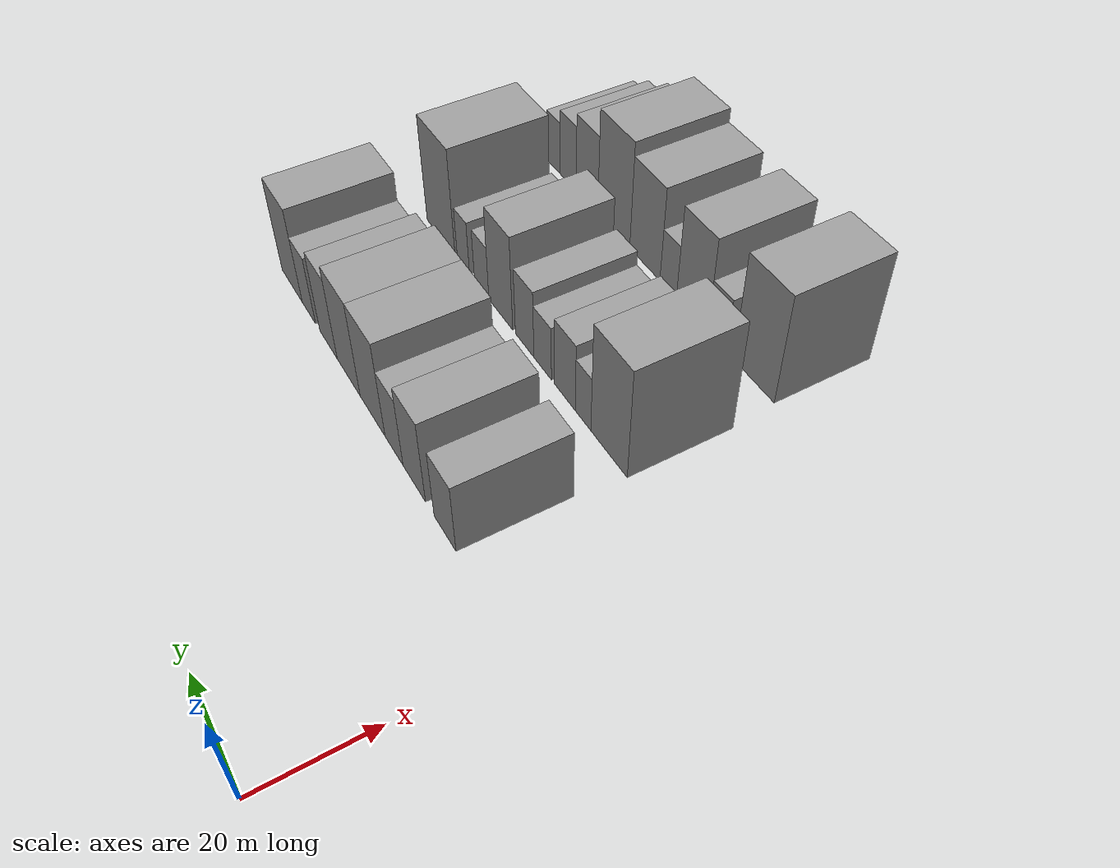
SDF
<sdf version="1.6">
 <world name="default">
  <model name="building_40">
   <static>1</static>
   <pose>50.0000 23.3545 0 0.000000 0.000000 0.000000</pose>
   <link name="link">
    <pose>0 0 7.50 0 0 0</pose>
    <collision name="collision"><geometry><box><size>20.0000 7.3714 15.0000</size></box></geometry></collision>
    <visual name="visual">
     <cast_shadows>0</cast_shadows>
     <geometry><box><size>20.0000 7.3714 15.0000</size></box></geometry>
     <material>
      <script>
       <uri>model://grey_wall/materials/scripts</uri>
       <uri>model://grey_wall/materials/textures</uri>
       <name>vrc/grey_wall</name>
      </script>
     </material>
    </visual>
   </link>
  </model>
  <model name="building_41">
   <static>1</static>
   <pose>50.0000 34.0789 0 0.000000 0.000000 0.000000</pose>
   <link name="link">
    <pose>0 0 9.00 0 0 0</pose>
    <collision name="collision"><geometry><box><size>20.0000 8.0774 18.0000</size></box></geometry></collision>
    <visual name="visual">
     <cast_shadows>0</cast_shadows>
     <geometry><box><size>20.0000 8.0774 18.0000</size></box></geometry>
     <material>
      <script>
       <uri>model://grey_wall/materials/scripts</uri>
       <uri>model://grey_wall/materials/textures</uri>
       <name>vrc/grey_wall</name>
      </script>
     </material>
    </visual>
   </link>
  </model>
  <model name="building_42">
   <static>1</static>
   <pose>50.0000 41.5247 0 0.000000 0.000000 0.000000</pose>
   <link name="link">
    <pose>0 0 7.50 0 0 0</pose>
    <collision name="collision"><geometry><box><size>20.0000 6.8142 15.0000</size></box></geometry></collision>
    <visual name="visual">
     <cast_shadows>0</cast_shadows>
     <geometry><box><size>20.0000 6.8142 15.0000</size></box></geometry>
     <material>
      <script>
       <uri>model://grey_wall/materials/scripts</uri>
       <uri>model://grey_wall/materials/textures</uri>
       <name>vrc/grey_wall</name>
      </script>
     </material>
    </visual>
   </link>
  </model>
  <model name="building_43">
   <static>1</static>
   <pose>50.0000 49.9054 0 0.000000 0.000000 0.000000</pose>
   <link name="link">
    <pose>0 0 10.50 0 0 0</pose>
    <collision name="collision"><geometry><box><size>20.0000 9.9473 21.0000</size></box></geometry></collision>
    <visual name="visual">
     <cast_shadows>0</cast_shadows>
     <geometry><box><size>20.0000 9.9473 21.0000</size></box></geometry>
     <material>
      <script>
       <uri>model://grey_wall/materials/scripts</uri>
       <uri>model://grey_wall/materials/textures</uri>
       <name>vrc/grey_wall</name>
      </script>
     </material>
    </visual>
   </link>
  </model>
  <model name="building_44">
   <static>1</static>
   <pose>50.0000 59.7354 0 0.000000 0.000000 0.000000</pose>
   <link name="link">
    <pose>0 0 10.50 0 0 0</pose>
    <collision name="collision"><geometry><box><size>20.0000 9.7126 21.0000</size></box></geometry></collision>
    <visual name="visual">
     <cast_shadows>0</cast_shadows>
     <geometry><box><size>20.0000 9.7126 21.0000</size></box></geometry>
     <material>
      <script>
       <uri>model://grey_wall/materials/scripts</uri>
       <uri>model://grey_wall/materials/textures</uri>
       <name>vrc/grey_wall</name>
      </script>
     </material>
    </visual>
   </link>
  </model>
  <model name="building_45">
   <static>1</static>
   <pose>50.0000 68.4710 0 0.000000 0.000000 0.000000</pose>
   <link name="link">
    <pose>0 0 9.00 0 0 0</pose>
    <collision name="collision"><geometry><box><size>20.0000 7.7587 18.0000</size></box></geometry></collision>
    <visual name="visual">
     <cast_shadows>0</cast_shadows>
     <geometry><box><size>20.0000 7.7587 18.0000</size></box></geometry>
     <material>
      <script>
       <uri>model://grey_wall/materials/scripts</uri>
       <uri>model://grey_wall/materials/textures</uri>
       <name>vrc/grey_wall</name>
      </script>
     </material>
    </visual>
   </link>
  </model>
  <model name="building_46">
   <static>1</static>
   <pose>50.0000 77.4622 0 0.000000 0.000000 0.000000</pose>
   <link name="link">
    <pose>0 0 7.50 0 0 0</pose>
    <collision name="collision"><geometry><box><size>20.0000 6.2238 15.0000</size></box></geometry></collision>
    <visual name="visual">
     <cast_shadows>0</cast_shadows>
     <geometry><box><size>20.0000 6.2238 15.0000</size></box></geometry>
     <material>
      <script>
       <uri>model://grey_wall/materials/scripts</uri>
       <uri>model://grey_wall/materials/textures</uri>
       <name>vrc/grey_wall</name>
      </script>
     </material>
    </visual>
   </link>
  </model>
  <model name="building_47">
   <static>1</static>
   <pose>50.0000 85.5248 0 0.000000 0.000000 0.000000</pose>
   <link name="link">
    <pose>0 0 10.50 0 0 0</pose>
    <collision name="collision"><geometry><box><size>20.0000 9.9014 21.0000</size></box></geometry></collision>
    <visual name="visual">
     <cast_shadows>0</cast_shadows>
     <geometry><box><size>20.0000 9.9014 21.0000</size></box></geometry>
     <material>
      <script>
       <uri>model://grey_wall/materials/scripts</uri>
       <uri>model://grey_wall/materials/textures</uri>
       <name>vrc/grey_wall</name>
      </script>
     </material>
    </visual>
   </link>
  </model>
  <model name="building_113">
   <static>1</static>
   <pose>79.0000 24.1483 0 0.000000 0.000000 0.000000</pose>
   <link name="link">
    <pose>0 0 12.00 0 0 0</pose>
    <collision name="collision"><geometry><box><size>20.0000 10.9408 24.0000</size></box></geometry></collision>
    <visual name="visual">
     <cast_shadows>0</cast_shadows>
     <geometry><box><size>20.0000 10.9408 24.0000</size></box></geometry>
     <material>
      <script>
       <uri>model://grey_wall/materials/scripts</uri>
       <uri>model://grey_wall/materials/textures</uri>
       <name>vrc/grey_wall</name>
      </script>
     </material>
    </visual>
   </link>
  </model>
  <model name="building_114">
   <static>1</static>
   <pose>79.0000 32.0598 0 0.000000 0.000000 0.000000</pose>
   <link name="link">
    <pose>0 0 6.00 0 0 0</pose>
    <collision name="collision"><geometry><box><size>20.0000 4.8822 12.0000</size></box></geometry></collision>
    <visual name="visual">
     <cast_shadows>0</cast_shadows>
     <geometry><box><size>20.0000 4.8822 12.0000</size></box></geometry>
     <material>
      <script>
       <uri>model://grey_wall/materials/scripts</uri>
       <uri>model://grey_wall/materials/textures</uri>
       <name>vrc/grey_wall</name>
      </script>
     </material>
    </visual>
   </link>
  </model>
  <model name="building_115">
   <static>1</static>
   <pose>79.0000 37.9210 0 0.000000 0.000000 0.000000</pose>
   <link name="link">
    <pose>0 0 7.50 0 0 0</pose>
    <collision name="collision"><geometry><box><size>20.0000 6.8402 15.0000</size></box></geometry></collision>
    <visual name="visual">
     <cast_shadows>0</cast_shadows>
     <geometry><box><size>20.0000 6.8402 15.0000</size></box></geometry>
     <material>
      <script>
       <uri>model://grey_wall/materials/scripts</uri>
       <uri>model://grey_wall/materials/textures</uri>
       <name>vrc/grey_wall</name>
      </script>
     </material>
    </visual>
   </link>
  </model>
  <model name="building_116">
   <static>1</static>
   <pose>79.0000 45.3367 0 0.000000 0.000000 0.000000</pose>
   <link name="link">
    <pose>0 0 6.00 0 0 0</pose>
    <collision name="collision"><geometry><box><size>20.0000 5.9912 12.0000</size></box></geometry></collision>
    <visual name="visual">
     <cast_shadows>0</cast_shadows>
     <geometry><box><size>20.0000 5.9912 12.0000</size></box></geometry>
     <material>
      <script>
       <uri>model://grey_wall/materials/scripts</uri>
       <uri>model://grey_wall/materials/textures</uri>
       <name>vrc/grey_wall</name>
      </script>
     </material>
    </visual>
   </link>
  </model>
  <model name="building_117">
   <static>1</static>
   <pose>79.0000 51.6072 0 0.000000 0.000000 0.000000</pose>
   <link name="link">
    <pose>0 0 7.50 0 0 0</pose>
    <collision name="collision"><geometry><box><size>20.0000 6.5499 15.0000</size></box></geometry></collision>
    <visual name="visual">
     <cast_shadows>0</cast_shadows>
     <geometry><box><size>20.0000 6.5499 15.0000</size></box></geometry>
     <material>
      <script>
       <uri>model://grey_wall/materials/scripts</uri>
       <uri>model://grey_wall/materials/textures</uri>
       <name>vrc/grey_wall</name>
      </script>
     </material>
    </visual>
   </link>
  </model>
  <model name="building_118">
   <static>1</static>
   <pose>79.0000 60.3320 0 0.000000 0.000000 0.000000</pose>
   <link name="link">
    <pose>0 0 10.50 0 0 0</pose>
    <collision name="collision"><geometry><box><size>20.0000 8.8999 21.0000</size></box></geometry></collision>
    <visual name="visual">
     <cast_shadows>0</cast_shadows>
     <geometry><box><size>20.0000 8.8999 21.0000</size></box></geometry>
     <material>
      <script>
       <uri>model://grey_wall/materials/scripts</uri>
       <uri>model://grey_wall/materials/textures</uri>
       <name>vrc/grey_wall</name>
      </script>
     </material>
    </visual>
   </link>
  </model>
  <model name="building_119">
   <static>1</static>
   <pose>79.0000 67.5649 0 0.000000 0.000000 0.000000</pose>
   <link name="link">
    <pose>0 0 6.00 0 0 0</pose>
    <collision name="collision"><geometry><box><size>20.0000 5.5659 12.0000</size></box></geometry></collision>
    <visual name="visual">
     <cast_shadows>0</cast_shadows>
     <geometry><box><size>20.0000 5.5659 12.0000</size></box></geometry>
     <material>
      <script>
       <uri>model://grey_wall/materials/scripts</uri>
       <uri>model://grey_wall/materials/textures</uri>
       <name>vrc/grey_wall</name>
      </script>
     </material>
    </visual>
   </link>
  </model>
  <model name="building_120">
   <static>1</static>
   <pose>79.0000 74.7906 0 0.000000 0.000000 0.000000</pose>
   <link name="link">
    <pose>0 0 6.00 0 0 0</pose>
    <collision name="collision"><geometry><box><size>20.0000 4.8855 12.0000</size></box></geometry></collision>
    <visual name="visual">
     <cast_shadows>0</cast_shadows>
     <geometry><box><size>20.0000 4.8855 12.0000</size></box></geometry>
     <material>
      <script>
       <uri>model://grey_wall/materials/scripts</uri>
       <uri>model://grey_wall/materials/textures</uri>
       <name>vrc/grey_wall</name>
      </script>
     </material>
    </visual>
   </link>
  </model>
  <model name="building_121">
   <static>1</static>
   <pose>79.0000 84.1583 0 0.000000 0.000000 0.000000</pose>
   <link name="link">
    <pose>0 0 12.00 0 0 0</pose>
    <collision name="collision"><geometry><box><size>20.0000 11.8498 24.0000</size></box></geometry></collision>
    <visual name="visual">
     <cast_shadows>0</cast_shadows>
     <geometry><box><size>20.0000 11.8498 24.0000</size></box></geometry>
     <material>
      <script>
       <uri>model://grey_wall/materials/scripts</uri>
       <uri>model://grey_wall/materials/textures</uri>
       <name>vrc/grey_wall</name>
      </script>
     </material>
    </visual>
   </link>
  </model>
  <model name="building_180">
   <static>1</static>
   <pose>108.0000 25.3670 0 0.000000 0.000000 0.000000</pose>
   <link name="link">
    <pose>0 0 12.00 0 0 0</pose>
    <collision name="collision"><geometry><box><size>20.0000 11.3753 24.0000</size></box></geometry></collision>
    <visual name="visual">
     <cast_shadows>0</cast_shadows>
     <geometry><box><size>20.0000 11.3753 24.0000</size></box></geometry>
     <material>
      <script>
       <uri>model://grey_wall/materials/scripts</uri>
       <uri>model://grey_wall/materials/textures</uri>
       <name>vrc/grey_wall</name>
      </script>
     </material>
    </visual>
   </link>
  </model>
  <model name="building_181">
   <static>1</static>
   <pose>108.0000 35.8681 0 0.000000 0.000000 0.000000</pose>
   <link name="link">
    <pose>0 0 6.00 0 0 0</pose>
    <collision name="collision"><geometry><box><size>20.0000 5.6270 12.0000</size></box></geometry></collision>
    <visual name="visual">
     <cast_shadows>0</cast_shadows>
     <geometry><box><size>20.0000 5.6270 12.0000</size></box></geometry>
     <material>
      <script>
       <uri>model://grey_wall/materials/scripts</uri>
       <uri>model://grey_wall/materials/textures</uri>
       <name>vrc/grey_wall</name>
      </script>
     </material>
    </visual>
   </link>
  </model>
  <model name="building_182">
   <static>1</static>
   <pose>108.0000 43.5416 0 0.000000 0.000000 0.000000</pose>
   <link name="link">
    <pose>0 0 10.50 0 0 0</pose>
    <collision name="collision"><geometry><box><size>20.0000 9.7200 21.0000</size></box></geometry></collision>
    <visual name="visual">
     <cast_shadows>0</cast_shadows>
     <geometry><box><size>20.0000 9.7200 21.0000</size></box></geometry>
     <material>
      <script>
       <uri>model://grey_wall/materials/scripts</uri>
       <uri>model://grey_wall/materials/textures</uri>
       <name>vrc/grey_wall</name>
      </script>
     </material>
    </visual>
   </link>
  </model>
  <model name="building_183">
   <static>1</static>
   <pose>108.0000 51.0547 0 0.000000 0.000000 0.000000</pose>
   <link name="link">
    <pose>0 0 6.00 0 0 0</pose>
    <collision name="collision"><geometry><box><size>20.0000 5.3060 12.0000</size></box></geometry></collision>
    <visual name="visual">
     <cast_shadows>0</cast_shadows>
     <geometry><box><size>20.0000 5.3060 12.0000</size></box></geometry>
     <material>
      <script>
       <uri>model://grey_wall/materials/scripts</uri>
       <uri>model://grey_wall/materials/textures</uri>
       <name>vrc/grey_wall</name>
      </script>
     </material>
    </visual>
   </link>
  </model>
  <model name="building_184">
   <static>1</static>
   <pose>108.0000 58.8086 0 0.000000 0.000000 0.000000</pose>
   <link name="link">
    <pose>0 0 10.50 0 0 0</pose>
    <collision name="collision"><geometry><box><size>20.0000 10.2019 21.0000</size></box></geometry></collision>
    <visual name="visual">
     <cast_shadows>0</cast_shadows>
     <geometry><box><size>20.0000 10.2019 21.0000</size></box></geometry>
     <material>
      <script>
       <uri>model://grey_wall/materials/scripts</uri>
       <uri>model://grey_wall/materials/textures</uri>
       <name>vrc/grey_wall</name>
      </script>
     </material>
    </visual>
   </link>
  </model>
  <model name="building_185">
   <static>1</static>
   <pose>108.0000 69.6362 0 0.000000 0.000000 0.000000</pose>
   <link name="link">
    <pose>0 0 12.00 0 0 0</pose>
    <collision name="collision"><geometry><box><size>20.0000 11.4534 24.0000</size></box></geometry></collision>
    <visual name="visual">
     <cast_shadows>0</cast_shadows>
     <geometry><box><size>20.0000 11.4534 24.0000</size></box></geometry>
     <material>
      <script>
       <uri>model://grey_wall/materials/scripts</uri>
       <uri>model://grey_wall/materials/textures</uri>
       <name>vrc/grey_wall</name>
      </script>
     </material>
    </visual>
   </link>
  </model>
  <model name="building_186">
   <static>1</static>
   <pose>108.0000 79.4406 0 0.000000 0.000000 0.000000</pose>
   <link name="link">
    <pose>0 0 9.00 0 0 0</pose>
    <collision name="collision"><geometry><box><size>20.0000 8.1554 18.0000</size></box></geometry></collision>
    <visual name="visual">
     <cast_shadows>0</cast_shadows>
     <geometry><box><size>20.0000 8.1554 18.0000</size></box></geometry>
     <material>
      <script>
       <uri>model://grey_wall/materials/scripts</uri>
       <uri>model://grey_wall/materials/textures</uri>
       <name>vrc/grey_wall</name>
      </script>
     </material>
    </visual>
   </link>
  </model>
  <model name="building_187">
   <static>1</static>
   <pose>108.0000 86.6622 0 0.000000 0.000000 0.000000</pose>
   <link name="link">
    <pose>0 0 7.50 0 0 0</pose>
    <collision name="collision"><geometry><box><size>20.0000 6.2878 15.0000</size></box></geometry></collision>
    <visual name="visual">
     <cast_shadows>0</cast_shadows>
     <geometry><box><size>20.0000 6.2878 15.0000</size></box></geometry>
     <material>
      <script>
       <uri>model://grey_wall/materials/scripts</uri>
       <uri>model://grey_wall/materials/textures</uri>
       <name>vrc/grey_wall</name>
      </script>
     </material>
    </visual>
   </link>
  </model>
  <model name="building_188">
   <static>1</static>
   <pose>108.0000 92.4083 0 0.000000 0.000000 0.000000</pose>
   <link name="link">
    <pose>0 0 6.00 0 0 0</pose>
    <collision name="collision"><geometry><box><size>20.0000 5.2045 12.0000</size></box></geometry></collision>
    <visual name="visual">
     <cast_shadows>0</cast_shadows>
     <geometry><box><size>20.0000 5.2045 12.0000</size></box></geometry>
     <material>
      <script>
       <uri>model://grey_wall/materials/scripts</uri>
       <uri>model://grey_wall/materials/textures</uri>
       <name>vrc/grey_wall</name>
      </script>
     </material>
    </visual>
   </link>
  </model>
 </world>
</sdf>
